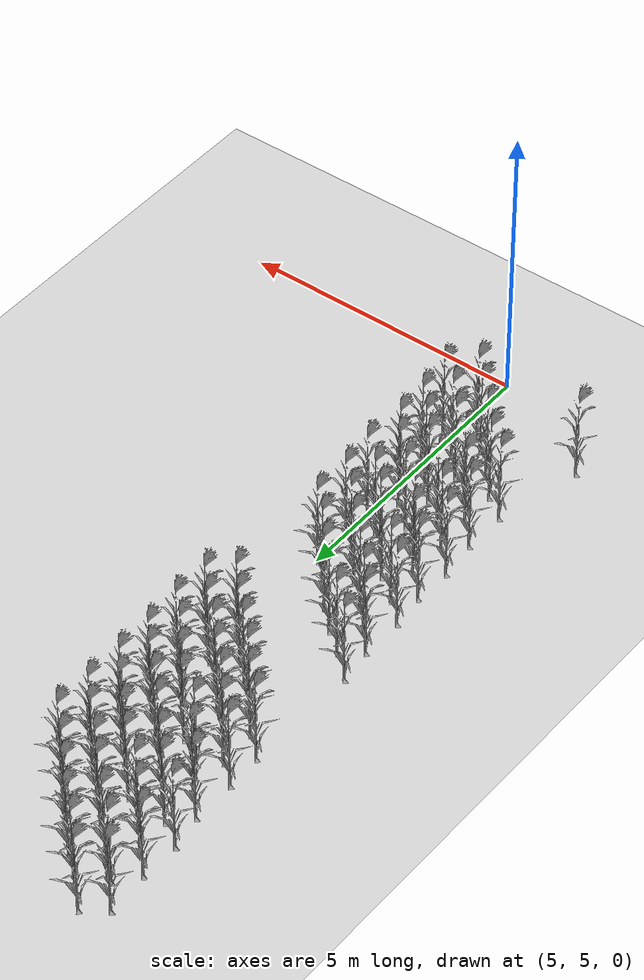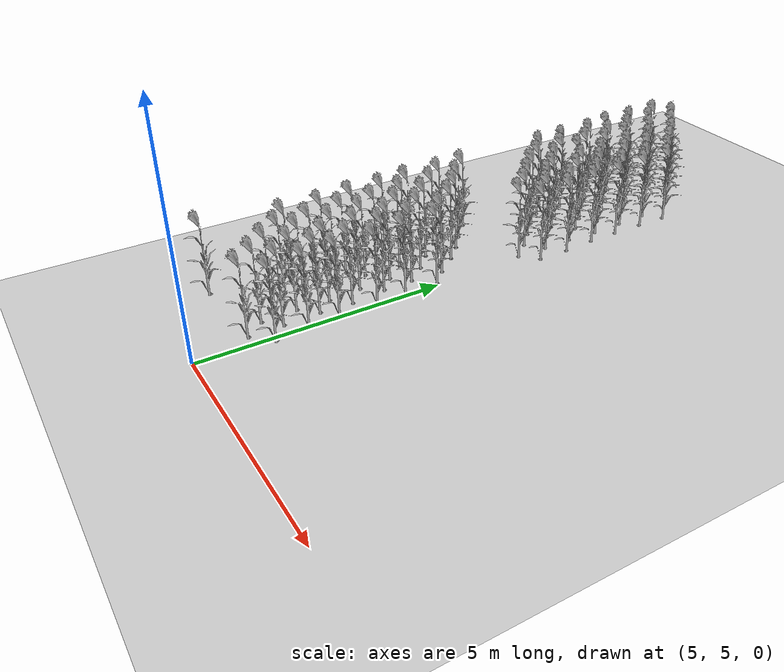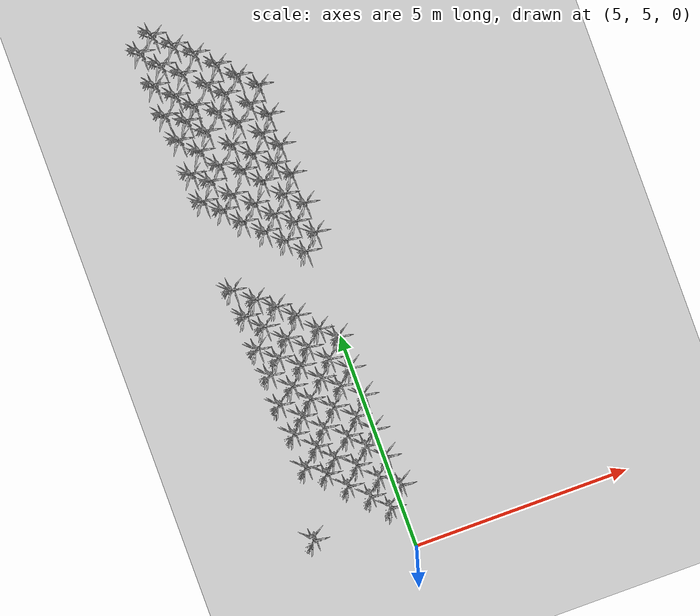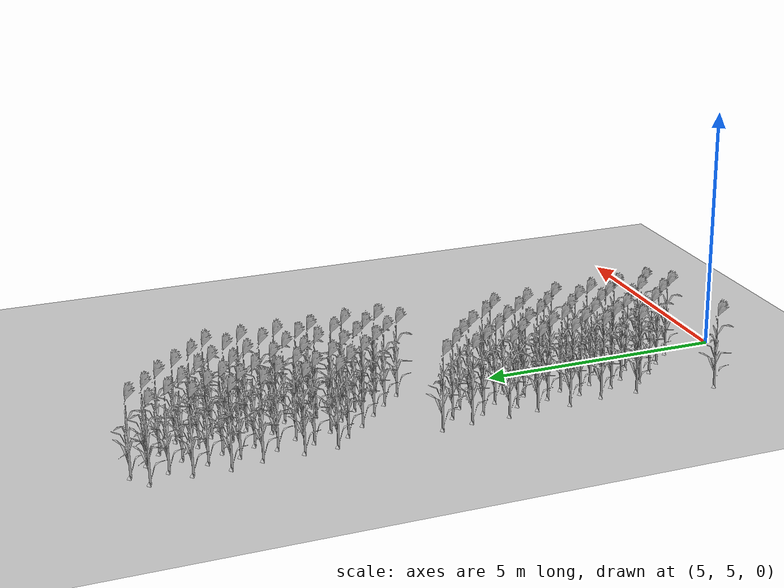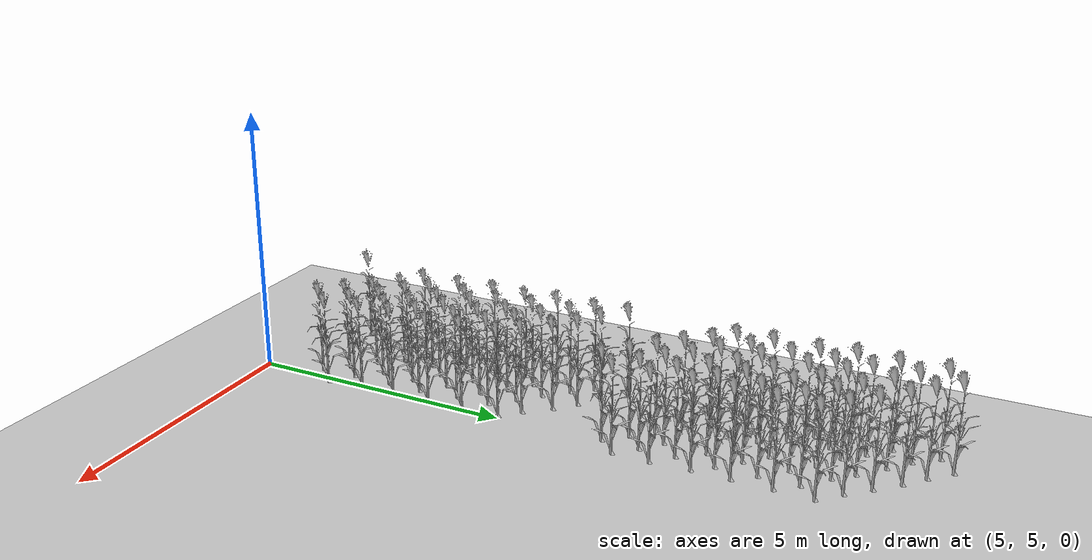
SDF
<sdf version="1.7">
 <world name="farmland_world">
  <model name="ground_plane">
   <static>1</static>
   <link name="link">
    <collision name="collision">
     <geometry><plane><normal>0 0 1</normal><size>40.0 40.0</size></plane></geometry>
     <surface><friction><ode><mu>100</mu><mu2>50</mu2></ode></friction></surface>
    </collision>
    <visual name="visual">
     <cast_shadows>0</cast_shadows>
     <geometry><plane><normal>0 0 1</normal><size>40.0 40.0</size></plane></geometry>
     <material>
      <script><uri>file://media/materials/scripts/gazebo.material</uri><name>Gazebo/Grey</name></script>
     </material>
    </visual>
   </link>
  </model>
  <model name="tree_3_263">
   <static>1</static>
   <link name="link">
    <collision name="collision">
     <geometry><mesh><uri>model://Corn_low_poly/corn.obj</uri><scale>1 1 1</scale></mesh></geometry>
     <surface><friction><ode><mu>100</mu><mu2>50</mu2></ode></friction></surface>
    </collision>
    <visual name="visual">
     <geometry><mesh><uri>model://Corn_low_poly/corn.obj</uri><scale>1 1 1</scale></mesh></geometry>
    </visual>
   </link>
   <pose>2.9800998695018057 6.04899679545808 0 0 0 0</pose>
  </model>
  <model name="tree_3_311">
   <static>1</static>
   <link name="link">
    <collision name="collision">
     <geometry><mesh><uri>model://Corn_low_poly/corn.obj</uri><scale>1 1 1</scale></mesh></geometry>
     <surface><friction><ode><mu>100</mu><mu2>50</mu2></ode></friction></surface>
    </collision>
    <visual name="visual">
     <geometry><mesh><uri>model://Corn_low_poly/corn.obj</uri><scale>1 1 1</scale></mesh></geometry>
    </visual>
   </link>
   <pose>4.805542092696412 6.14249882103318 0 0 0 0</pose>
  </model>
  <model name="tree_3_312">
   <static>1</static>
   <link name="link">
    <collision name="collision">
     <geometry><mesh><uri>model://Corn_low_poly/corn.obj</uri><scale>1 1 1</scale></mesh></geometry>
     <surface><friction><ode><mu>100</mu><mu2>50</mu2></ode></friction></surface>
    </collision>
    <visual name="visual">
     <geometry><mesh><uri>model://Corn_low_poly/corn.obj</uri><scale>1 1 1</scale></mesh></geometry>
    </visual>
   </link>
   <pose>4.471642438130773 6.525872151705552 0 0 0 0</pose>
  </model>
  <model name="tree_3_313">
   <static>1</static>
   <link name="link">
    <collision name="collision">
     <geometry><mesh><uri>model://Corn_low_poly/corn.obj</uri><scale>1 1 1</scale></mesh></geometry>
     <surface><friction><ode><mu>100</mu><mu2>50</mu2></ode></friction></surface>
    </collision>
    <visual name="visual">
     <geometry><mesh><uri>model://Corn_low_poly/corn.obj</uri><scale>1 1 1</scale></mesh></geometry>
    </visual>
   </link>
   <pose>4.086310407645287 6.902726868057514 0 0 0 0</pose>
  </model>
  <model name="tree_3_314">
   <static>1</static>
   <link name="link">
    <collision name="collision">
     <geometry><mesh><uri>model://Corn_low_poly/corn.obj</uri><scale>1 1 1</scale></mesh></geometry>
     <surface><friction><ode><mu>100</mu><mu2>50</mu2></ode></friction></surface>
    </collision>
    <visual name="visual">
     <geometry><mesh><uri>model://Corn_low_poly/corn.obj</uri><scale>1 1 1</scale></mesh></geometry>
    </visual>
   </link>
   <pose>3.732719031649534 7.308818042067649 0 0 0 0</pose>
  </model>
  <model name="tree_3_315">
   <static>1</static>
   <link name="link">
    <collision name="collision">
     <geometry><mesh><uri>model://Corn_low_poly/corn.obj</uri><scale>1 1 1</scale></mesh></geometry>
     <surface><friction><ode><mu>100</mu><mu2>50</mu2></ode></friction></surface>
    </collision>
    <visual name="visual">
     <geometry><mesh><uri>model://Corn_low_poly/corn.obj</uri><scale>1 1 1</scale></mesh></geometry>
    </visual>
   </link>
   <pose>3.348082132055598 7.588535359604881 0 0 0 0</pose>
  </model>
  <model name="tree_3_356">
   <static>1</static>
   <link name="link">
    <collision name="collision">
     <geometry><mesh><uri>model://Corn_low_poly/corn.obj</uri><scale>1 1 1</scale></mesh></geometry>
     <surface><friction><ode><mu>100</mu><mu2>50</mu2></ode></friction></surface>
    </collision>
    <visual name="visual">
     <geometry><mesh><uri>model://Corn_low_poly/corn.obj</uri><scale>1 1 1</scale></mesh></geometry>
    </visual>
   </link>
   <pose>5.1875630933190555 6.532963566849071 0 0 0 0</pose>
  </model>
  <model name="tree_3_357">
   <static>1</static>
   <link name="link">
    <collision name="collision">
     <geometry><mesh><uri>model://Corn_low_poly/corn.obj</uri><scale>1 1 1</scale></mesh></geometry>
     <surface><friction><ode><mu>100</mu><mu2>50</mu2></ode></friction></surface>
    </collision>
    <visual name="visual">
     <geometry><mesh><uri>model://Corn_low_poly/corn.obj</uri><scale>1 1 1</scale></mesh></geometry>
    </visual>
   </link>
   <pose>4.786662068624661 6.845874681617286 0 0 0 0</pose>
  </model>
  <model name="tree_3_358">
   <static>1</static>
   <link name="link">
    <collision name="collision">
     <geometry><mesh><uri>model://Corn_low_poly/corn.obj</uri><scale>1 1 1</scale></mesh></geometry>
     <surface><friction><ode><mu>100</mu><mu2>50</mu2></ode></friction></surface>
    </collision>
    <visual name="visual">
     <geometry><mesh><uri>model://Corn_low_poly/corn.obj</uri><scale>1 1 1</scale></mesh></geometry>
    </visual>
   </link>
   <pose>4.422640665598174 7.261527710791572 0 0 0 0</pose>
  </model>
  <model name="tree_3_359">
   <static>1</static>
   <link name="link">
    <collision name="collision">
     <geometry><mesh><uri>model://Corn_low_poly/corn.obj</uri><scale>1 1 1</scale></mesh></geometry>
     <surface><friction><ode><mu>100</mu><mu2>50</mu2></ode></friction></surface>
    </collision>
    <visual name="visual">
     <geometry><mesh><uri>model://Corn_low_poly/corn.obj</uri><scale>1 1 1</scale></mesh></geometry>
    </visual>
   </link>
   <pose>4.017024880418044 7.581367064398772 0 0 0 0</pose>
  </model>
  <model name="tree_3_360">
   <static>1</static>
   <link name="link">
    <collision name="collision">
     <geometry><mesh><uri>model://Corn_low_poly/corn.obj</uri><scale>1 1 1</scale></mesh></geometry>
     <surface><friction><ode><mu>100</mu><mu2>50</mu2></ode></friction></surface>
    </collision>
    <visual name="visual">
     <geometry><mesh><uri>model://Corn_low_poly/corn.obj</uri><scale>1 1 1</scale></mesh></geometry>
    </visual>
   </link>
   <pose>3.72822369538162 7.948249980980284 0 0 0 0</pose>
  </model>
  <model name="tree_3_361">
   <static>1</static>
   <link name="link">
    <collision name="collision">
     <geometry><mesh><uri>model://Corn_low_poly/corn.obj</uri><scale>1 1 1</scale></mesh></geometry>
     <surface><friction><ode><mu>100</mu><mu2>50</mu2></ode></friction></surface>
    </collision>
    <visual name="visual">
     <geometry><mesh><uri>model://Corn_low_poly/corn.obj</uri><scale>1 1 1</scale></mesh></geometry>
    </visual>
   </link>
   <pose>3.353128830228061 8.363672920463536 0 0 0 0</pose>
  </model>
  <model name="tree_3_402">
   <static>1</static>
   <link name="link">
    <collision name="collision">
     <geometry><mesh><uri>model://Corn_low_poly/corn.obj</uri><scale>1 1 1</scale></mesh></geometry>
     <surface><friction><ode><mu>100</mu><mu2>50</mu2></ode></friction></surface>
    </collision>
    <visual name="visual">
     <geometry><mesh><uri>model://Corn_low_poly/corn.obj</uri><scale>1 1 1</scale></mesh></geometry>
    </visual>
   </link>
   <pose>5.092461038873655 7.220846508363839 0 0 0 0</pose>
  </model>
  <model name="tree_3_403">
   <static>1</static>
   <link name="link">
    <collision name="collision">
     <geometry><mesh><uri>model://Corn_low_poly/corn.obj</uri><scale>1 1 1</scale></mesh></geometry>
     <surface><friction><ode><mu>100</mu><mu2>50</mu2></ode></friction></surface>
    </collision>
    <visual name="visual">
     <geometry><mesh><uri>model://Corn_low_poly/corn.obj</uri><scale>1 1 1</scale></mesh></geometry>
    </visual>
   </link>
   <pose>4.752056957866517 7.594020463828173 0 0 0 0</pose>
  </model>
  <model name="tree_3_404">
   <static>1</static>
   <link name="link">
    <collision name="collision">
     <geometry><mesh><uri>model://Corn_low_poly/corn.obj</uri><scale>1 1 1</scale></mesh></geometry>
     <surface><friction><ode><mu>100</mu><mu2>50</mu2></ode></friction></surface>
    </collision>
    <visual name="visual">
     <geometry><mesh><uri>model://Corn_low_poly/corn.obj</uri><scale>1 1 1</scale></mesh></geometry>
    </visual>
   </link>
   <pose>4.447072771768467 7.932576859378708 0 0 0 0</pose>
  </model>
  <model name="tree_3_405">
   <static>1</static>
   <link name="link">
    <collision name="collision">
     <geometry><mesh><uri>model://Corn_low_poly/corn.obj</uri><scale>1 1 1</scale></mesh></geometry>
     <surface><friction><ode><mu>100</mu><mu2>50</mu2></ode></friction></surface>
    </collision>
    <visual name="visual">
     <geometry><mesh><uri>model://Corn_low_poly/corn.obj</uri><scale>1 1 1</scale></mesh></geometry>
    </visual>
   </link>
   <pose>4.018052557734162 8.276946767474161 0 0 0 0</pose>
  </model>
  <model name="tree_3_406">
   <static>1</static>
   <link name="link">
    <collision name="collision">
     <geometry><mesh><uri>model://Corn_low_poly/corn.obj</uri><scale>1 1 1</scale></mesh></geometry>
     <surface><friction><ode><mu>100</mu><mu2>50</mu2></ode></friction></surface>
    </collision>
    <visual name="visual">
     <geometry><mesh><uri>model://Corn_low_poly/corn.obj</uri><scale>1 1 1</scale></mesh></geometry>
    </visual>
   </link>
   <pose>3.6569074912284716 8.668532560187328 0 0 0 0</pose>
  </model>
  <model name="tree_3_407">
   <static>1</static>
   <link name="link">
    <collision name="collision">
     <geometry><mesh><uri>model://Corn_low_poly/corn.obj</uri><scale>1 1 1</scale></mesh></geometry>
     <surface><friction><ode><mu>100</mu><mu2>50</mu2></ode></friction></surface>
    </collision>
    <visual name="visual">
     <geometry><mesh><uri>model://Corn_low_poly/corn.obj</uri><scale>1 1 1</scale></mesh></geometry>
    </visual>
   </link>
   <pose>3.2700684875715145 9.071117529920514 0 0 0 0</pose>
  </model>
  <model name="tree_3_448">
   <static>1</static>
   <link name="link">
    <collision name="collision">
     <geometry><mesh><uri>model://Corn_low_poly/corn.obj</uri><scale>1 1 1</scale></mesh></geometry>
     <surface><friction><ode><mu>100</mu><mu2>50</mu2></ode></friction></surface>
    </collision>
    <visual name="visual">
     <geometry><mesh><uri>model://Corn_low_poly/corn.obj</uri><scale>1 1 1</scale></mesh></geometry>
    </visual>
   </link>
   <pose>5.041479969485266 7.86605701631845 0 0 0 0</pose>
  </model>
  <model name="tree_3_449">
   <static>1</static>
   <link name="link">
    <collision name="collision">
     <geometry><mesh><uri>model://Corn_low_poly/corn.obj</uri><scale>1 1 1</scale></mesh></geometry>
     <surface><friction><ode><mu>100</mu><mu2>50</mu2></ode></friction></surface>
    </collision>
    <visual name="visual">
     <geometry><mesh><uri>model://Corn_low_poly/corn.obj</uri><scale>1 1 1</scale></mesh></geometry>
    </visual>
   </link>
   <pose>4.769951855964197 8.269292016423975 0 0 0 0</pose>
  </model>
  <model name="tree_3_450">
   <static>1</static>
   <link name="link">
    <collision name="collision">
     <geometry><mesh><uri>model://Corn_low_poly/corn.obj</uri><scale>1 1 1</scale></mesh></geometry>
     <surface><friction><ode><mu>100</mu><mu2>50</mu2></ode></friction></surface>
    </collision>
    <visual name="visual">
     <geometry><mesh><uri>model://Corn_low_poly/corn.obj</uri><scale>1 1 1</scale></mesh></geometry>
    </visual>
   </link>
   <pose>4.373098503538097 8.623678165969185 0 0 0 0</pose>
  </model>
  <model name="tree_3_451">
   <static>1</static>
   <link name="link">
    <collision name="collision">
     <geometry><mesh><uri>model://Corn_low_poly/corn.obj</uri><scale>1 1 1</scale></mesh></geometry>
     <surface><friction><ode><mu>100</mu><mu2>50</mu2></ode></friction></surface>
    </collision>
    <visual name="visual">
     <geometry><mesh><uri>model://Corn_low_poly/corn.obj</uri><scale>1 1 1</scale></mesh></geometry>
    </visual>
   </link>
   <pose>3.9547724393098265 8.951976785518811 0 0 0 0</pose>
  </model>
  <model name="tree_3_452">
   <static>1</static>
   <link name="link">
    <collision name="collision">
     <geometry><mesh><uri>model://Corn_low_poly/corn.obj</uri><scale>1 1 1</scale></mesh></geometry>
     <surface><friction><ode><mu>100</mu><mu2>50</mu2></ode></friction></surface>
    </collision>
    <visual name="visual">
     <geometry><mesh><uri>model://Corn_low_poly/corn.obj</uri><scale>1 1 1</scale></mesh></geometry>
    </visual>
   </link>
   <pose>3.6820636430793243 9.355094004210791 0 0 0 0</pose>
  </model>
  <model name="tree_3_453">
   <static>1</static>
   <link name="link">
    <collision name="collision">
     <geometry><mesh><uri>model://Corn_low_poly/corn.obj</uri><scale>1 1 1</scale></mesh></geometry>
     <surface><friction><ode><mu>100</mu><mu2>50</mu2></ode></friction></surface>
    </collision>
    <visual name="visual">
     <geometry><mesh><uri>model://Corn_low_poly/corn.obj</uri><scale>1 1 1</scale></mesh></geometry>
    </visual>
   </link>
   <pose>3.293023397518933 9.752002931094632 0 0 0 0</pose>
  </model>
  <model name="tree_3_494">
   <static>1</static>
   <link name="link">
    <collision name="collision">
     <geometry><mesh><uri>model://Corn_low_poly/corn.obj</uri><scale>1 1 1</scale></mesh></geometry>
     <surface><friction><ode><mu>100</mu><mu2>50</mu2></ode></friction></surface>
    </collision>
    <visual name="visual">
     <geometry><mesh><uri>model://Corn_low_poly/corn.obj</uri><scale>1 1 1</scale></mesh></geometry>
    </visual>
   </link>
   <pose>5.082858257511719 8.645690154072108 0 0 0 0</pose>
  </model>
  <model name="tree_3_495">
   <static>1</static>
   <link name="link">
    <collision name="collision">
     <geometry><mesh><uri>model://Corn_low_poly/corn.obj</uri><scale>1 1 1</scale></mesh></geometry>
     <surface><friction><ode><mu>100</mu><mu2>50</mu2></ode></friction></surface>
    </collision>
    <visual name="visual">
     <geometry><mesh><uri>model://Corn_low_poly/corn.obj</uri><scale>1 1 1</scale></mesh></geometry>
    </visual>
   </link>
   <pose>4.667713088301647 9.007154507095937 0 0 0 0</pose>
  </model>
  <model name="tree_3_496">
   <static>1</static>
   <link name="link">
    <collision name="collision">
     <geometry><mesh><uri>model://Corn_low_poly/corn.obj</uri><scale>1 1 1</scale></mesh></geometry>
     <surface><friction><ode><mu>100</mu><mu2>50</mu2></ode></friction></surface>
    </collision>
    <visual name="visual">
     <geometry><mesh><uri>model://Corn_low_poly/corn.obj</uri><scale>1 1 1</scale></mesh></geometry>
    </visual>
   </link>
   <pose>4.33718402193764 9.311391562554608 0 0 0 0</pose>
  </model>
  <model name="tree_3_497">
   <static>1</static>
   <link name="link">
    <collision name="collision">
     <geometry><mesh><uri>model://Corn_low_poly/corn.obj</uri><scale>1 1 1</scale></mesh></geometry>
     <surface><friction><ode><mu>100</mu><mu2>50</mu2></ode></friction></surface>
    </collision>
    <visual name="visual">
     <geometry><mesh><uri>model://Corn_low_poly/corn.obj</uri><scale>1 1 1</scale></mesh></geometry>
    </visual>
   </link>
   <pose>4.008202114809039 9.714509958757425 0 0 0 0</pose>
  </model>
  <model name="tree_3_498">
   <static>1</static>
   <link name="link">
    <collision name="collision">
     <geometry><mesh><uri>model://Corn_low_poly/corn.obj</uri><scale>1 1 1</scale></mesh></geometry>
     <surface><friction><ode><mu>100</mu><mu2>50</mu2></ode></friction></surface>
    </collision>
    <visual name="visual">
     <geometry><mesh><uri>model://Corn_low_poly/corn.obj</uri><scale>1 1 1</scale></mesh></geometry>
    </visual>
   </link>
   <pose>3.593144958158228 10.039528050335575 0 0 0 0</pose>
  </model>
  <model name="tree_3_499">
   <static>1</static>
   <link name="link">
    <collision name="collision">
     <geometry><mesh><uri>model://Corn_low_poly/corn.obj</uri><scale>1 1 1</scale></mesh></geometry>
     <surface><friction><ode><mu>100</mu><mu2>50</mu2></ode></friction></surface>
    </collision>
    <visual name="visual">
     <geometry><mesh><uri>model://Corn_low_poly/corn.obj</uri><scale>1 1 1</scale></mesh></geometry>
    </visual>
   </link>
   <pose>3.2257232998211016 10.373148226690665 0 0 0 0</pose>
  </model>
  <model name="tree_3_540">
   <static>1</static>
   <link name="link">
    <collision name="collision">
     <geometry><mesh><uri>model://Corn_low_poly/corn.obj</uri><scale>1 1 1</scale></mesh></geometry>
     <surface><friction><ode><mu>100</mu><mu2>50</mu2></ode></friction></surface>
    </collision>
    <visual name="visual">
     <geometry><mesh><uri>model://Corn_low_poly/corn.obj</uri><scale>1 1 1</scale></mesh></geometry>
    </visual>
   </link>
   <pose>5.0040059718222345 9.300441176661161 0 0 0 0</pose>
  </model>
  <model name="tree_3_541">
   <static>1</static>
   <link name="link">
    <collision name="collision">
     <geometry><mesh><uri>model://Corn_low_poly/corn.obj</uri><scale>1 1 1</scale></mesh></geometry>
     <surface><friction><ode><mu>100</mu><mu2>50</mu2></ode></friction></surface>
    </collision>
    <visual name="visual">
     <geometry><mesh><uri>model://Corn_low_poly/corn.obj</uri><scale>1 1 1</scale></mesh></geometry>
    </visual>
   </link>
   <pose>4.639587998202376 9.642789224698875 0 0 0 0</pose>
  </model>
  <model name="tree_3_542">
   <static>1</static>
   <link name="link">
    <collision name="collision">
     <geometry><mesh><uri>model://Corn_low_poly/corn.obj</uri><scale>1 1 1</scale></mesh></geometry>
     <surface><friction><ode><mu>100</mu><mu2>50</mu2></ode></friction></surface>
    </collision>
    <visual name="visual">
     <geometry><mesh><uri>model://Corn_low_poly/corn.obj</uri><scale>1 1 1</scale></mesh></geometry>
    </visual>
   </link>
   <pose>4.28928896466384 10.044341788991785 0 0 0 0</pose>
  </model>
  <model name="tree_3_543">
   <static>1</static>
   <link name="link">
    <collision name="collision">
     <geometry><mesh><uri>model://Corn_low_poly/corn.obj</uri><scale>1 1 1</scale></mesh></geometry>
     <surface><friction><ode><mu>100</mu><mu2>50</mu2></ode></friction></surface>
    </collision>
    <visual name="visual">
     <geometry><mesh><uri>model://Corn_low_poly/corn.obj</uri><scale>1 1 1</scale></mesh></geometry>
    </visual>
   </link>
   <pose>3.91560319860455 10.378574507296301 0 0 0 0</pose>
  </model>
  <model name="tree_3_544">
   <static>1</static>
   <link name="link">
    <collision name="collision">
     <geometry><mesh><uri>model://Corn_low_poly/corn.obj</uri><scale>1 1 1</scale></mesh></geometry>
     <surface><friction><ode><mu>100</mu><mu2>50</mu2></ode></friction></surface>
    </collision>
    <visual name="visual">
     <geometry><mesh><uri>model://Corn_low_poly/corn.obj</uri><scale>1 1 1</scale></mesh></geometry>
    </visual>
   </link>
   <pose>3.537222879358048 10.785024990961862 0 0 0 0</pose>
  </model>
  <model name="tree_3_545">
   <static>1</static>
   <link name="link">
    <collision name="collision">
     <geometry><mesh><uri>model://Corn_low_poly/corn.obj</uri><scale>1 1 1</scale></mesh></geometry>
     <surface><friction><ode><mu>100</mu><mu2>50</mu2></ode></friction></surface>
    </collision>
    <visual name="visual">
     <geometry><mesh><uri>model://Corn_low_poly/corn.obj</uri><scale>1 1 1</scale></mesh></geometry>
    </visual>
   </link>
   <pose>3.234069786536773 11.13998966512663 0 0 0 0</pose>
  </model>
  <model name="tree_3_586">
   <static>1</static>
   <link name="link">
    <collision name="collision">
     <geometry><mesh><uri>model://Corn_low_poly/corn.obj</uri><scale>1 1 1</scale></mesh></geometry>
     <surface><friction><ode><mu>100</mu><mu2>50</mu2></ode></friction></surface>
    </collision>
    <visual name="visual">
     <geometry><mesh><uri>model://Corn_low_poly/corn.obj</uri><scale>1 1 1</scale></mesh></geometry>
    </visual>
   </link>
   <pose>4.990124117955477 10.02535580561402 0 0 0 0</pose>
  </model>
  <model name="tree_3_587">
   <static>1</static>
   <link name="link">
    <collision name="collision">
     <geometry><mesh><uri>model://Corn_low_poly/corn.obj</uri><scale>1 1 1</scale></mesh></geometry>
     <surface><friction><ode><mu>100</mu><mu2>50</mu2></ode></friction></surface>
    </collision>
    <visual name="visual">
     <geometry><mesh><uri>model://Corn_low_poly/corn.obj</uri><scale>1 1 1</scale></mesh></geometry>
    </visual>
   </link>
   <pose>4.656105419739319 10.3363474409409 0 0 0 0</pose>
  </model>
  <model name="tree_3_588">
   <static>1</static>
   <link name="link">
    <collision name="collision">
     <geometry><mesh><uri>model://Corn_low_poly/corn.obj</uri><scale>1 1 1</scale></mesh></geometry>
     <surface><friction><ode><mu>100</mu><mu2>50</mu2></ode></friction></surface>
    </collision>
    <visual name="visual">
     <geometry><mesh><uri>model://Corn_low_poly/corn.obj</uri><scale>1 1 1</scale></mesh></geometry>
    </visual>
   </link>
   <pose>4.292310034555109 10.774910096219354 0 0 0 0</pose>
  </model>
  <model name="tree_3_589">
   <static>1</static>
   <link name="link">
    <collision name="collision">
     <geometry><mesh><uri>model://Corn_low_poly/corn.obj</uri><scale>1 1 1</scale></mesh></geometry>
     <surface><friction><ode><mu>100</mu><mu2>50</mu2></ode></friction></surface>
    </collision>
    <visual name="visual">
     <geometry><mesh><uri>model://Corn_low_poly/corn.obj</uri><scale>1 1 1</scale></mesh></geometry>
    </visual>
   </link>
   <pose>3.939739836645646 11.110022262936814 0 0 0 0</pose>
  </model>
  <model name="tree_3_590">
   <static>1</static>
   <link name="link">
    <collision name="collision">
     <geometry><mesh><uri>model://Corn_low_poly/corn.obj</uri><scale>1 1 1</scale></mesh></geometry>
     <surface><friction><ode><mu>100</mu><mu2>50</mu2></ode></friction></surface>
    </collision>
    <visual name="visual">
     <geometry><mesh><uri>model://Corn_low_poly/corn.obj</uri><scale>1 1 1</scale></mesh></geometry>
    </visual>
   </link>
   <pose>3.567448176668048 11.405456255652302 0 0 0 0</pose>
  </model>
  <model name="tree_3_591">
   <static>1</static>
   <link name="link">
    <collision name="collision">
     <geometry><mesh><uri>model://Corn_low_poly/corn.obj</uri><scale>1 1 1</scale></mesh></geometry>
     <surface><friction><ode><mu>100</mu><mu2>50</mu2></ode></friction></surface>
    </collision>
    <visual name="visual">
     <geometry><mesh><uri>model://Corn_low_poly/corn.obj</uri><scale>1 1 1</scale></mesh></geometry>
    </visual>
   </link>
   <pose>3.1518545818822994 11.77311972944187 0 0 0 0</pose>
  </model>
  <model name="tree_3_642">
   <static>1</static>
   <link name="link">
    <collision name="collision">
     <geometry><mesh><uri>model://Corn_low_poly/corn.obj</uri><scale>1 1 1</scale></mesh></geometry>
     <surface><friction><ode><mu>100</mu><mu2>50</mu2></ode></friction></surface>
    </collision>
    <visual name="visual">
     <geometry><mesh><uri>model://Corn_low_poly/corn.obj</uri><scale>1 1 1</scale></mesh></geometry>
    </visual>
   </link>
   <pose>4.963148346891122 12.02000223788955 0 0 0 0</pose>
  </model>
  <model name="tree_3_643">
   <static>1</static>
   <link name="link">
    <collision name="collision">
     <geometry><mesh><uri>model://Corn_low_poly/corn.obj</uri><scale>1 1 1</scale></mesh></geometry>
     <surface><friction><ode><mu>100</mu><mu2>50</mu2></ode></friction></surface>
    </collision>
    <visual name="visual">
     <geometry><mesh><uri>model://Corn_low_poly/corn.obj</uri><scale>1 1 1</scale></mesh></geometry>
    </visual>
   </link>
   <pose>4.629394350042968 12.397897736387188 0 0 0 0</pose>
  </model>
  <model name="tree_3_644">
   <static>1</static>
   <link name="link">
    <collision name="collision">
     <geometry><mesh><uri>model://Corn_low_poly/corn.obj</uri><scale>1 1 1</scale></mesh></geometry>
     <surface><friction><ode><mu>100</mu><mu2>50</mu2></ode></friction></surface>
    </collision>
    <visual name="visual">
     <geometry><mesh><uri>model://Corn_low_poly/corn.obj</uri><scale>1 1 1</scale></mesh></geometry>
    </visual>
   </link>
   <pose>4.269035677179306 12.739841543503015 0 0 0 0</pose>
  </model>
  <model name="tree_3_645">
   <static>1</static>
   <link name="link">
    <collision name="collision">
     <geometry><mesh><uri>model://Corn_low_poly/corn.obj</uri><scale>1 1 1</scale></mesh></geometry>
     <surface><friction><ode><mu>100</mu><mu2>50</mu2></ode></friction></surface>
    </collision>
    <visual name="visual">
     <geometry><mesh><uri>model://Corn_low_poly/corn.obj</uri><scale>1 1 1</scale></mesh></geometry>
    </visual>
   </link>
   <pose>3.8891734030538885 13.100529489395518 0 0 0 0</pose>
  </model>
  <model name="tree_3_646">
   <static>1</static>
   <link name="link">
    <collision name="collision">
     <geometry><mesh><uri>model://Corn_low_poly/corn.obj</uri><scale>1 1 1</scale></mesh></geometry>
     <surface><friction><ode><mu>100</mu><mu2>50</mu2></ode></friction></surface>
    </collision>
    <visual name="visual">
     <geometry><mesh><uri>model://Corn_low_poly/corn.obj</uri><scale>1 1 1</scale></mesh></geometry>
    </visual>
   </link>
   <pose>3.5622000594111167 13.494102801668477 0 0 0 0</pose>
  </model>
  <model name="tree_3_647">
   <static>1</static>
   <link name="link">
    <collision name="collision">
     <geometry><mesh><uri>model://Corn_low_poly/corn.obj</uri><scale>1 1 1</scale></mesh></geometry>
     <surface><friction><ode><mu>100</mu><mu2>50</mu2></ode></friction></surface>
    </collision>
    <visual name="visual">
     <geometry><mesh><uri>model://Corn_low_poly/corn.obj</uri><scale>1 1 1</scale></mesh></geometry>
    </visual>
   </link>
   <pose>3.2012050027232752 13.814558677139994 0 0 0 0</pose>
  </model>
  <model name="tree_3_686">
   <static>1</static>
   <link name="link">
    <collision name="collision">
     <geometry><mesh><uri>model://Corn_low_poly/corn.obj</uri><scale>1 1 1</scale></mesh></geometry>
     <surface><friction><ode><mu>100</mu><mu2>50</mu2></ode></friction></surface>
    </collision>
    <visual name="visual">
     <geometry><mesh><uri>model://Corn_low_poly/corn.obj</uri><scale>1 1 1</scale></mesh></geometry>
    </visual>
   </link>
   <pose>5.301229171341664 12.345086718394851 0 0 0 0</pose>
  </model>
  <model name="tree_3_687">
   <static>1</static>
   <link name="link">
    <collision name="collision">
     <geometry><mesh><uri>model://Corn_low_poly/corn.obj</uri><scale>1 1 1</scale></mesh></geometry>
     <surface><friction><ode><mu>100</mu><mu2>50</mu2></ode></friction></surface>
    </collision>
    <visual name="visual">
     <geometry><mesh><uri>model://Corn_low_poly/corn.obj</uri><scale>1 1 1</scale></mesh></geometry>
    </visual>
   </link>
   <pose>4.965397699945561 12.708346435153667 0 0 0 0</pose>
  </model>
  <model name="tree_3_688">
   <static>1</static>
   <link name="link">
    <collision name="collision">
     <geometry><mesh><uri>model://Corn_low_poly/corn.obj</uri><scale>1 1 1</scale></mesh></geometry>
     <surface><friction><ode><mu>100</mu><mu2>50</mu2></ode></friction></surface>
    </collision>
    <visual name="visual">
     <geometry><mesh><uri>model://Corn_low_poly/corn.obj</uri><scale>1 1 1</scale></mesh></geometry>
    </visual>
   </link>
   <pose>4.595986386010802 13.01808293746444 0 0 0 0</pose>
  </model>
  <model name="tree_3_689">
   <static>1</static>
   <link name="link">
    <collision name="collision">
     <geometry><mesh><uri>model://Corn_low_poly/corn.obj</uri><scale>1 1 1</scale></mesh></geometry>
     <surface><friction><ode><mu>100</mu><mu2>50</mu2></ode></friction></surface>
    </collision>
    <visual name="visual">
     <geometry><mesh><uri>model://Corn_low_poly/corn.obj</uri><scale>1 1 1</scale></mesh></geometry>
    </visual>
   </link>
   <pose>4.267244344828891 13.385882915867851 0 0 0 0</pose>
  </model>
  <model name="tree_3_690">
   <static>1</static>
   <link name="link">
    <collision name="collision">
     <geometry><mesh><uri>model://Corn_low_poly/corn.obj</uri><scale>1 1 1</scale></mesh></geometry>
     <surface><friction><ode><mu>100</mu><mu2>50</mu2></ode></friction></surface>
    </collision>
    <visual name="visual">
     <geometry><mesh><uri>model://Corn_low_poly/corn.obj</uri><scale>1 1 1</scale></mesh></geometry>
    </visual>
   </link>
   <pose>3.873959887166302 13.736355124088078 0 0 0 0</pose>
  </model>
  <model name="tree_3_691">
   <static>1</static>
   <link name="link">
    <collision name="collision">
     <geometry><mesh><uri>model://Corn_low_poly/corn.obj</uri><scale>1 1 1</scale></mesh></geometry>
     <surface><friction><ode><mu>100</mu><mu2>50</mu2></ode></friction></surface>
    </collision>
    <visual name="visual">
     <geometry><mesh><uri>model://Corn_low_poly/corn.obj</uri><scale>1 1 1</scale></mesh></geometry>
    </visual>
   </link>
   <pose>3.527789902019251 14.165676674638464 0 0 0 0</pose>
  </model>
  <model name="tree_3_692">
   <static>1</static>
   <link name="link">
    <collision name="collision">
     <geometry><mesh><uri>model://Corn_low_poly/corn.obj</uri><scale>1 1 1</scale></mesh></geometry>
     <surface><friction><ode><mu>100</mu><mu2>50</mu2></ode></friction></surface>
    </collision>
    <visual name="visual">
     <geometry><mesh><uri>model://Corn_low_poly/corn.obj</uri><scale>1 1 1</scale></mesh></geometry>
    </visual>
   </link>
   <pose>3.174288128576511 14.459511153606254 0 0 0 0</pose>
  </model>
  <model name="tree_3_730">
   <static>1</static>
   <link name="link">
    <collision name="collision">
     <geometry><mesh><uri>model://Corn_low_poly/corn.obj</uri><scale>1 1 1</scale></mesh></geometry>
     <surface><friction><ode><mu>100</mu><mu2>50</mu2></ode></friction></surface>
    </collision>
    <visual name="visual">
     <geometry><mesh><uri>model://Corn_low_poly/corn.obj</uri><scale>1 1 1</scale></mesh></geometry>
    </visual>
   </link>
   <pose>5.303280336884626 13.019551974426331 0 0 0 0</pose>
  </model>
  <model name="tree_3_731">
   <static>1</static>
   <link name="link">
    <collision name="collision">
     <geometry><mesh><uri>model://Corn_low_poly/corn.obj</uri><scale>1 1 1</scale></mesh></geometry>
     <surface><friction><ode><mu>100</mu><mu2>50</mu2></ode></friction></surface>
    </collision>
    <visual name="visual">
     <geometry><mesh><uri>model://Corn_low_poly/corn.obj</uri><scale>1 1 1</scale></mesh></geometry>
    </visual>
   </link>
   <pose>4.950514036265282 13.355397954722957 0 0 0 0</pose>
  </model>
  <model name="tree_3_732">
   <static>1</static>
   <link name="link">
    <collision name="collision">
     <geometry><mesh><uri>model://Corn_low_poly/corn.obj</uri><scale>1 1 1</scale></mesh></geometry>
     <surface><friction><ode><mu>100</mu><mu2>50</mu2></ode></friction></surface>
    </collision>
    <visual name="visual">
     <geometry><mesh><uri>model://Corn_low_poly/corn.obj</uri><scale>1 1 1</scale></mesh></geometry>
    </visual>
   </link>
   <pose>4.603871488552875 13.787511793373906 0 0 0 0</pose>
  </model>
  <model name="tree_3_733">
   <static>1</static>
   <link name="link">
    <collision name="collision">
     <geometry><mesh><uri>model://Corn_low_poly/corn.obj</uri><scale>1 1 1</scale></mesh></geometry>
     <surface><friction><ode><mu>100</mu><mu2>50</mu2></ode></friction></surface>
    </collision>
    <visual name="visual">
     <geometry><mesh><uri>model://Corn_low_poly/corn.obj</uri><scale>1 1 1</scale></mesh></geometry>
    </visual>
   </link>
   <pose>4.271604305824536 14.160331406739662 0 0 0 0</pose>
  </model>
  <model name="tree_3_734">
   <static>1</static>
   <link name="link">
    <collision name="collision">
     <geometry><mesh><uri>model://Corn_low_poly/corn.obj</uri><scale>1 1 1</scale></mesh></geometry>
     <surface><friction><ode><mu>100</mu><mu2>50</mu2></ode></friction></surface>
    </collision>
    <visual name="visual">
     <geometry><mesh><uri>model://Corn_low_poly/corn.obj</uri><scale>1 1 1</scale></mesh></geometry>
    </visual>
   </link>
   <pose>3.8254439805894336 14.428743125349502 0 0 0 0</pose>
  </model>
  <model name="tree_3_735">
   <static>1</static>
   <link name="link">
    <collision name="collision">
     <geometry><mesh><uri>model://Corn_low_poly/corn.obj</uri><scale>1 1 1</scale></mesh></geometry>
     <surface><friction><ode><mu>100</mu><mu2>50</mu2></ode></friction></surface>
    </collision>
    <visual name="visual">
     <geometry><mesh><uri>model://Corn_low_poly/corn.obj</uri><scale>1 1 1</scale></mesh></geometry>
    </visual>
   </link>
   <pose>3.5256622310191577 14.864710623564877 0 0 0 0</pose>
  </model>
  <model name="tree_3_736">
   <static>1</static>
   <link name="link">
    <collision name="collision">
     <geometry><mesh><uri>model://Corn_low_poly/corn.obj</uri><scale>1 1 1</scale></mesh></geometry>
     <surface><friction><ode><mu>100</mu><mu2>50</mu2></ode></friction></surface>
    </collision>
    <visual name="visual">
     <geometry><mesh><uri>model://Corn_low_poly/corn.obj</uri><scale>1 1 1</scale></mesh></geometry>
    </visual>
   </link>
   <pose>3.177401731578166 15.244217767439643 0 0 0 0</pose>
  </model>
  <model name="tree_3_773">
   <static>1</static>
   <link name="link">
    <collision name="collision">
     <geometry><mesh><uri>model://Corn_low_poly/corn.obj</uri><scale>1 1 1</scale></mesh></geometry>
     <surface><friction><ode><mu>100</mu><mu2>50</mu2></ode></friction></surface>
    </collision>
    <visual name="visual">
     <geometry><mesh><uri>model://Corn_low_poly/corn.obj</uri><scale>1 1 1</scale></mesh></geometry>
    </visual>
   </link>
   <pose>5.244819424995723 13.726524106601873 0 0 0 0</pose>
  </model>
  <model name="tree_3_774">
   <static>1</static>
   <link name="link">
    <collision name="collision">
     <geometry><mesh><uri>model://Corn_low_poly/corn.obj</uri><scale>1 1 1</scale></mesh></geometry>
     <surface><friction><ode><mu>100</mu><mu2>50</mu2></ode></friction></surface>
    </collision>
    <visual name="visual">
     <geometry><mesh><uri>model://Corn_low_poly/corn.obj</uri><scale>1 1 1</scale></mesh></geometry>
    </visual>
   </link>
   <pose>4.972363232540063 14.047871441759442 0 0 0 0</pose>
  </model>
  <model name="tree_3_775">
   <static>1</static>
   <link name="link">
    <collision name="collision">
     <geometry><mesh><uri>model://Corn_low_poly/corn.obj</uri><scale>1 1 1</scale></mesh></geometry>
     <surface><friction><ode><mu>100</mu><mu2>50</mu2></ode></friction></surface>
    </collision>
    <visual name="visual">
     <geometry><mesh><uri>model://Corn_low_poly/corn.obj</uri><scale>1 1 1</scale></mesh></geometry>
    </visual>
   </link>
   <pose>4.601471123785267 14.408453764614876 0 0 0 0</pose>
  </model>
  <model name="tree_3_776">
   <static>1</static>
   <link name="link">
    <collision name="collision">
     <geometry><mesh><uri>model://Corn_low_poly/corn.obj</uri><scale>1 1 1</scale></mesh></geometry>
     <surface><friction><ode><mu>100</mu><mu2>50</mu2></ode></friction></surface>
    </collision>
    <visual name="visual">
     <geometry><mesh><uri>model://Corn_low_poly/corn.obj</uri><scale>1 1 1</scale></mesh></geometry>
    </visual>
   </link>
   <pose>4.237919598123675 14.756427102299098 0 0 0 0</pose>
  </model>
  <model name="tree_3_777">
   <static>1</static>
   <link name="link">
    <collision name="collision">
     <geometry><mesh><uri>model://Corn_low_poly/corn.obj</uri><scale>1 1 1</scale></mesh></geometry>
     <surface><friction><ode><mu>100</mu><mu2>50</mu2></ode></friction></surface>
    </collision>
    <visual name="visual">
     <geometry><mesh><uri>model://Corn_low_poly/corn.obj</uri><scale>1 1 1</scale></mesh></geometry>
    </visual>
   </link>
   <pose>3.811538223049907 15.219833690348306 0 0 0 0</pose>
  </model>
  <model name="tree_3_778">
   <static>1</static>
   <link name="link">
    <collision name="collision">
     <geometry><mesh><uri>model://Corn_low_poly/corn.obj</uri><scale>1 1 1</scale></mesh></geometry>
     <surface><friction><ode><mu>100</mu><mu2>50</mu2></ode></friction></surface>
    </collision>
    <visual name="visual">
     <geometry><mesh><uri>model://Corn_low_poly/corn.obj</uri><scale>1 1 1</scale></mesh></geometry>
    </visual>
   </link>
   <pose>3.476120114545488 15.58204447262703 0 0 0 0</pose>
  </model>
  <model name="tree_3_779">
   <static>1</static>
   <link name="link">
    <collision name="collision">
     <geometry><mesh><uri>model://Corn_low_poly/corn.obj</uri><scale>1 1 1</scale></mesh></geometry>
     <surface><friction><ode><mu>100</mu><mu2>50</mu2></ode></friction></surface>
    </collision>
    <visual name="visual">
     <geometry><mesh><uri>model://Corn_low_poly/corn.obj</uri><scale>1 1 1</scale></mesh></geometry>
    </visual>
   </link>
   <pose>3.0637711427824144 15.853276281032466 0 0 0 0</pose>
  </model>
  <model name="tree_3_815">
   <static>1</static>
   <link name="link">
    <collision name="collision">
     <geometry><mesh><uri>model://Corn_low_poly/corn.obj</uri><scale>1 1 1</scale></mesh></geometry>
     <surface><friction><ode><mu>100</mu><mu2>50</mu2></ode></friction></surface>
    </collision>
    <visual name="visual">
     <geometry><mesh><uri>model://Corn_low_poly/corn.obj</uri><scale>1 1 1</scale></mesh></geometry>
    </visual>
   </link>
   <pose>5.231325956414455 14.400000731340736 0 0 0 0</pose>
  </model>
  <model name="tree_3_816">
   <static>1</static>
   <link name="link">
    <collision name="collision">
     <geometry><mesh><uri>model://Corn_low_poly/corn.obj</uri><scale>1 1 1</scale></mesh></geometry>
     <surface><friction><ode><mu>100</mu><mu2>50</mu2></ode></friction></surface>
    </collision>
    <visual name="visual">
     <geometry><mesh><uri>model://Corn_low_poly/corn.obj</uri><scale>1 1 1</scale></mesh></geometry>
    </visual>
   </link>
   <pose>4.943307225573808 14.767218761636608 0 0 0 0</pose>
  </model>
  <model name="tree_3_817">
   <static>1</static>
   <link name="link">
    <collision name="collision">
     <geometry><mesh><uri>model://Corn_low_poly/corn.obj</uri><scale>1 1 1</scale></mesh></geometry>
     <surface><friction><ode><mu>100</mu><mu2>50</mu2></ode></friction></surface>
    </collision>
    <visual name="visual">
     <geometry><mesh><uri>model://Corn_low_poly/corn.obj</uri><scale>1 1 1</scale></mesh></geometry>
    </visual>
   </link>
   <pose>4.533545462097698 15.173996750644356 0 0 0 0</pose>
  </model>
  <model name="tree_3_818">
   <static>1</static>
   <link name="link">
    <collision name="collision">
     <geometry><mesh><uri>model://Corn_low_poly/corn.obj</uri><scale>1 1 1</scale></mesh></geometry>
     <surface><friction><ode><mu>100</mu><mu2>50</mu2></ode></friction></surface>
    </collision>
    <visual name="visual">
     <geometry><mesh><uri>model://Corn_low_poly/corn.obj</uri><scale>1 1 1</scale></mesh></geometry>
    </visual>
   </link>
   <pose>4.191123221905449 15.531377180126325 0 0 0 0</pose>
  </model>
  <model name="tree_3_819">
   <static>1</static>
   <link name="link">
    <collision name="collision">
     <geometry><mesh><uri>model://Corn_low_poly/corn.obj</uri><scale>1 1 1</scale></mesh></geometry>
     <surface><friction><ode><mu>100</mu><mu2>50</mu2></ode></friction></surface>
    </collision>
    <visual name="visual">
     <geometry><mesh><uri>model://Corn_low_poly/corn.obj</uri><scale>1 1 1</scale></mesh></geometry>
    </visual>
   </link>
   <pose>3.748923310046067 15.838859801812339 0 0 0 0</pose>
  </model>
  <model name="tree_3_820">
   <static>1</static>
   <link name="link">
    <collision name="collision">
     <geometry><mesh><uri>model://Corn_low_poly/corn.obj</uri><scale>1 1 1</scale></mesh></geometry>
     <surface><friction><ode><mu>100</mu><mu2>50</mu2></ode></friction></surface>
    </collision>
    <visual name="visual">
     <geometry><mesh><uri>model://Corn_low_poly/corn.obj</uri><scale>1 1 1</scale></mesh></geometry>
    </visual>
   </link>
   <pose>3.4350045997004948 16.186445643202244 0 0 0 0</pose>
  </model>
  <model name="tree_3_821">
   <static>1</static>
   <link name="link">
    <collision name="collision">
     <geometry><mesh><uri>model://Corn_low_poly/corn.obj</uri><scale>1 1 1</scale></mesh></geometry>
     <surface><friction><ode><mu>100</mu><mu2>50</mu2></ode></friction></surface>
    </collision>
    <visual name="visual">
     <geometry><mesh><uri>model://Corn_low_poly/corn.obj</uri><scale>1 1 1</scale></mesh></geometry>
    </visual>
   </link>
   <pose>3.079209097930581 16.551512496498464 0 0 0 0</pose>
  </model>
  <model name="tree_3_856">
   <static>1</static>
   <link name="link">
    <collision name="collision">
     <geometry><mesh><uri>model://Corn_low_poly/corn.obj</uri><scale>1 1 1</scale></mesh></geometry>
     <surface><friction><ode><mu>100</mu><mu2>50</mu2></ode></friction></surface>
    </collision>
    <visual name="visual">
     <geometry><mesh><uri>model://Corn_low_poly/corn.obj</uri><scale>1 1 1</scale></mesh></geometry>
    </visual>
   </link>
   <pose>5.228561193179631 15.1033507713163 0 0 0 0</pose>
  </model>
  <model name="tree_3_857">
   <static>1</static>
   <link name="link">
    <collision name="collision">
     <geometry><mesh><uri>model://Corn_low_poly/corn.obj</uri><scale>1 1 1</scale></mesh></geometry>
     <surface><friction><ode><mu>100</mu><mu2>50</mu2></ode></friction></surface>
    </collision>
    <visual name="visual">
     <geometry><mesh><uri>model://Corn_low_poly/corn.obj</uri><scale>1 1 1</scale></mesh></geometry>
    </visual>
   </link>
   <pose>4.917571817094478 15.459848577235844 0 0 0 0</pose>
  </model>
  <model name="tree_3_858">
   <static>1</static>
   <link name="link">
    <collision name="collision">
     <geometry><mesh><uri>model://Corn_low_poly/corn.obj</uri><scale>1 1 1</scale></mesh></geometry>
     <surface><friction><ode><mu>100</mu><mu2>50</mu2></ode></friction></surface>
    </collision>
    <visual name="visual">
     <geometry><mesh><uri>model://Corn_low_poly/corn.obj</uri><scale>1 1 1</scale></mesh></geometry>
    </visual>
   </link>
   <pose>4.4831306561993935 15.854358545204656 0 0 0 0</pose>
  </model>
  <model name="tree_3_859">
   <static>1</static>
   <link name="link">
    <collision name="collision">
     <geometry><mesh><uri>model://Corn_low_poly/corn.obj</uri><scale>1 1 1</scale></mesh></geometry>
     <surface><friction><ode><mu>100</mu><mu2>50</mu2></ode></friction></surface>
    </collision>
    <visual name="visual">
     <geometry><mesh><uri>model://Corn_low_poly/corn.obj</uri><scale>1 1 1</scale></mesh></geometry>
    </visual>
   </link>
   <pose>4.172185103205286 16.180041922968478 0 0 0 0</pose>
  </model>
  <model name="tree_3_860">
   <static>1</static>
   <link name="link">
    <collision name="collision">
     <geometry><mesh><uri>model://Corn_low_poly/corn.obj</uri><scale>1 1 1</scale></mesh></geometry>
     <surface><friction><ode><mu>100</mu><mu2>50</mu2></ode></friction></surface>
    </collision>
    <visual name="visual">
     <geometry><mesh><uri>model://Corn_low_poly/corn.obj</uri><scale>1 1 1</scale></mesh></geometry>
    </visual>
   </link>
   <pose>3.7427877971917707 16.58409503250704 0 0 0 0</pose>
  </model>
  <model name="tree_3_861">
   <static>1</static>
   <link name="link">
    <collision name="collision">
     <geometry><mesh><uri>model://Corn_low_poly/corn.obj</uri><scale>1 1 1</scale></mesh></geometry>
     <surface><friction><ode><mu>100</mu><mu2>50</mu2></ode></friction></surface>
    </collision>
    <visual name="visual">
     <geometry><mesh><uri>model://Corn_low_poly/corn.obj</uri><scale>1 1 1</scale></mesh></geometry>
    </visual>
   </link>
   <pose>3.3609752257124854 16.917956793489193 0 0 0 0</pose>
  </model>
  <model name="tree_3_862">
   <static>1</static>
   <link name="link">
    <collision name="collision">
     <geometry><mesh><uri>model://Corn_low_poly/corn.obj</uri><scale>1 1 1</scale></mesh></geometry>
     <surface><friction><ode><mu>100</mu><mu2>50</mu2></ode></friction></surface>
    </collision>
    <visual name="visual">
     <geometry><mesh><uri>model://Corn_low_poly/corn.obj</uri><scale>1 1 1</scale></mesh></geometry>
    </visual>
   </link>
   <pose>3.027036666388138 17.331408270132 0 0 0 0</pose>
  </model>
  <model name="tree_3_896">
   <static>1</static>
   <link name="link">
    <collision name="collision">
     <geometry><mesh><uri>model://Corn_low_poly/corn.obj</uri><scale>1 1 1</scale></mesh></geometry>
     <surface><friction><ode><mu>100</mu><mu2>50</mu2></ode></friction></surface>
    </collision>
    <visual name="visual">
     <geometry><mesh><uri>model://Corn_low_poly/corn.obj</uri><scale>1 1 1</scale></mesh></geometry>
    </visual>
   </link>
   <pose>5.235541581086961 15.776426474005534 0 0 0 0</pose>
  </model>
  <model name="tree_3_897">
   <static>1</static>
   <link name="link">
    <collision name="collision">
     <geometry><mesh><uri>model://Corn_low_poly/corn.obj</uri><scale>1 1 1</scale></mesh></geometry>
     <surface><friction><ode><mu>100</mu><mu2>50</mu2></ode></friction></surface>
    </collision>
    <visual name="visual">
     <geometry><mesh><uri>model://Corn_low_poly/corn.obj</uri><scale>1 1 1</scale></mesh></geometry>
    </visual>
   </link>
   <pose>4.865209213615665 16.137120341813613 0 0 0 0</pose>
  </model>
  <model name="tree_3_898">
   <static>1</static>
   <link name="link">
    <collision name="collision">
     <geometry><mesh><uri>model://Corn_low_poly/corn.obj</uri><scale>1 1 1</scale></mesh></geometry>
     <surface><friction><ode><mu>100</mu><mu2>50</mu2></ode></friction></surface>
    </collision>
    <visual name="visual">
     <geometry><mesh><uri>model://Corn_low_poly/corn.obj</uri><scale>1 1 1</scale></mesh></geometry>
    </visual>
   </link>
   <pose>4.514619934299305 16.520475425976134 0 0 0 0</pose>
  </model>
  <model name="tree_3_899">
   <static>1</static>
   <link name="link">
    <collision name="collision">
     <geometry><mesh><uri>model://Corn_low_poly/corn.obj</uri><scale>1 1 1</scale></mesh></geometry>
     <surface><friction><ode><mu>100</mu><mu2>50</mu2></ode></friction></surface>
    </collision>
    <visual name="visual">
     <geometry><mesh><uri>model://Corn_low_poly/corn.obj</uri><scale>1 1 1</scale></mesh></geometry>
    </visual>
   </link>
   <pose>4.145236707875794 16.91365144469394 0 0 0 0</pose>
  </model>
  <model name="tree_3_900">
   <static>1</static>
   <link name="link">
    <collision name="collision">
     <geometry><mesh><uri>model://Corn_low_poly/corn.obj</uri><scale>1 1 1</scale></mesh></geometry>
     <surface><friction><ode><mu>100</mu><mu2>50</mu2></ode></friction></surface>
    </collision>
    <visual name="visual">
     <geometry><mesh><uri>model://Corn_low_poly/corn.obj</uri><scale>1 1 1</scale></mesh></geometry>
    </visual>
   </link>
   <pose>3.7700794688706223 17.232805743230355 0 0 0 0</pose>
  </model>
  <model name="tree_3_901">
   <static>1</static>
   <link name="link">
    <collision name="collision">
     <geometry><mesh><uri>model://Corn_low_poly/corn.obj</uri><scale>1 1 1</scale></mesh></geometry>
     <surface><friction><ode><mu>100</mu><mu2>50</mu2></ode></friction></surface>
    </collision>
    <visual name="visual">
     <geometry><mesh><uri>model://Corn_low_poly/corn.obj</uri><scale>1 1 1</scale></mesh></geometry>
    </visual>
   </link>
   <pose>3.403453897167427 17.59820204832087 0 0 0 0</pose>
  </model>
 </world>
</sdf>
